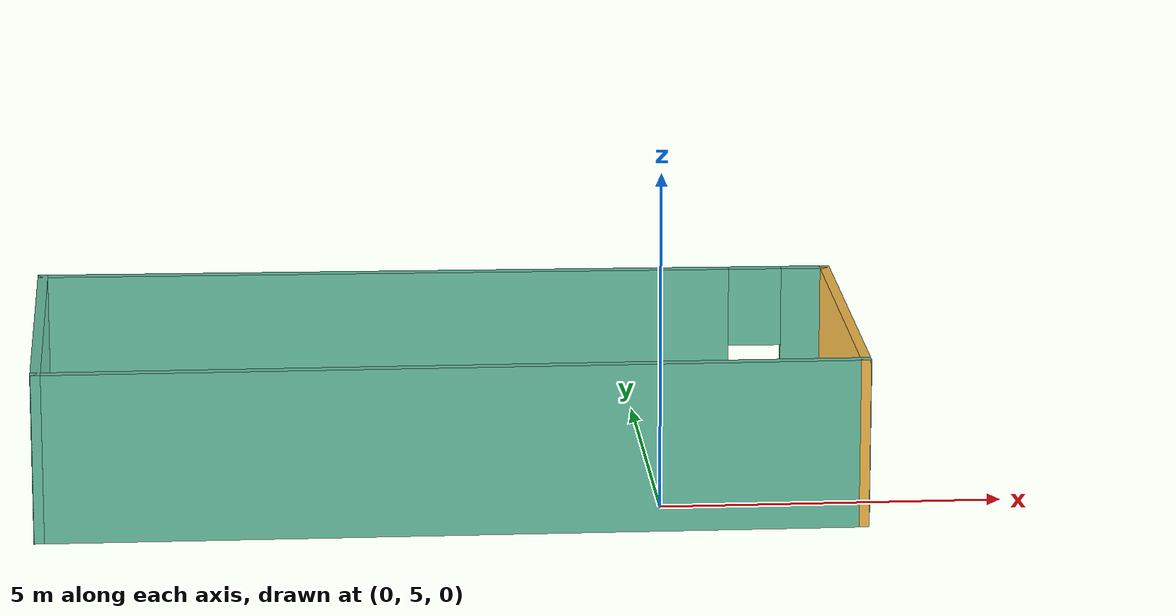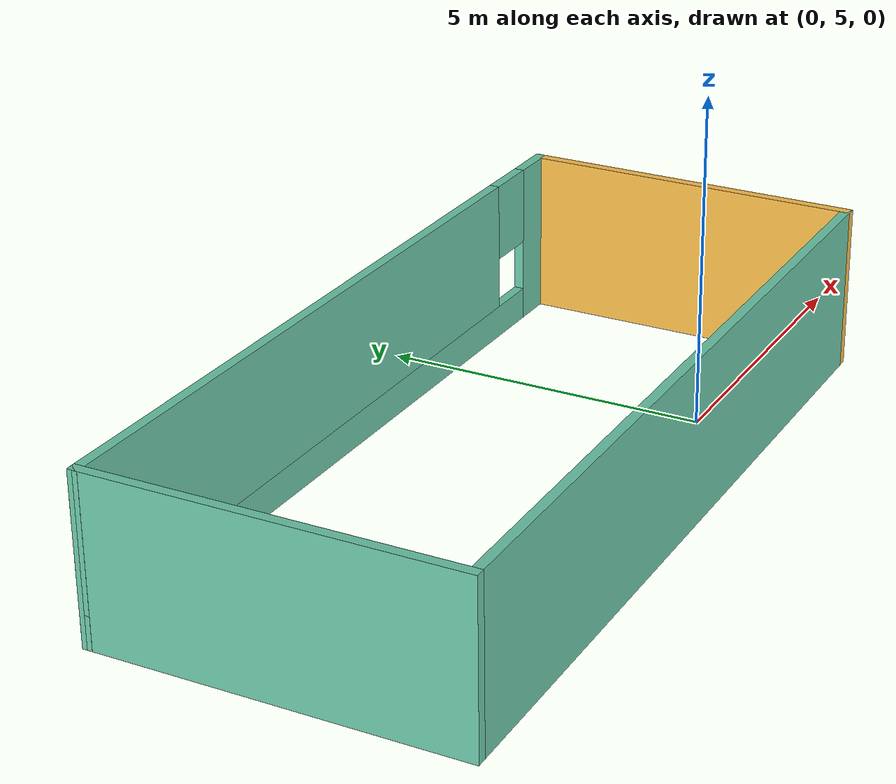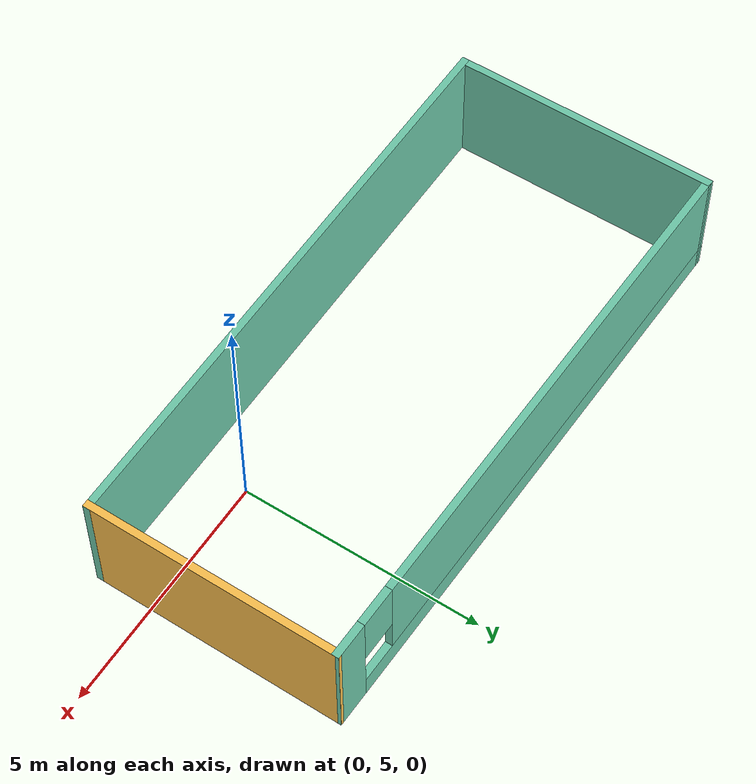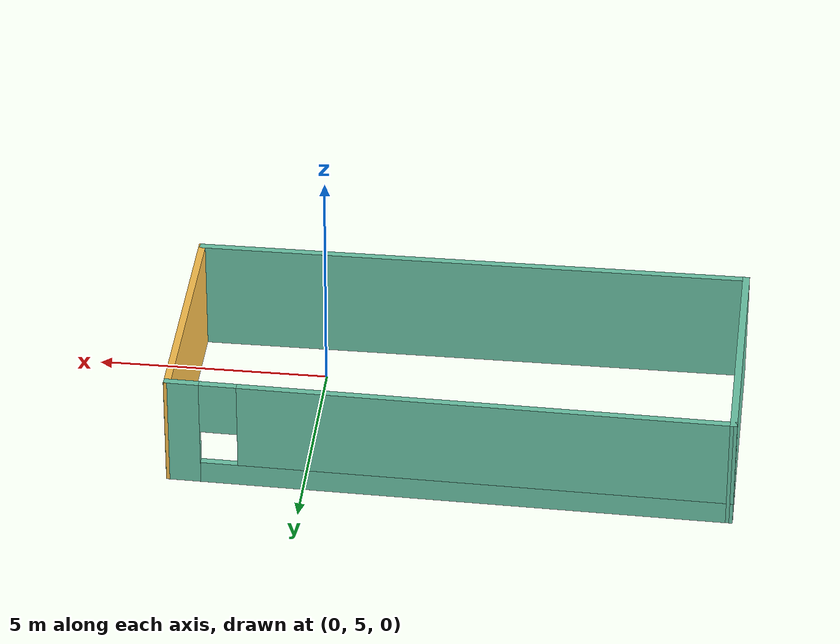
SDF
<?xml version='1.0'?>
<sdf version='1.7'>
  <model name='building2'>
    <pose>-3.07669 4.65816 0 0 -0 0</pose>
    <link name='Wall_1'>
      <collision name='Wall_1_Collision'>
        <geometry>
          <box>
            <size>5.5 0.15 2.5</size>
          </box>
        </geometry>
        <pose>0 0 1.25 0 -0 0</pose>
      </collision>
      <visual name='Wall_1_Visual'>
        <pose>0 0 1.25 0 -0 0</pose>
        <geometry>
          <box>
            <size>5.5 0.15 2.5</size>
          </box>
        </geometry>
        <material>
          <script>
            <uri>file://media/materials/scripts/gazebo.material</uri>
            <name>Gazebo/Grey</name>
          </script>
          <ambient>0.435294 0.796078 0.67451 1</ambient>
        </material>
        <meta>
          <layer>0</layer>
        </meta>
      </visual>
      <pose>-5.925 1.90659 0 0 -0 -1.5708</pose>
    </link>
    <link name='Wall_2'>
      <collision name='Wall_2_Collision'>
        <geometry>
          <box>
            <size>12 0.15 2.5</size>
          </box>
        </geometry>
        <pose>0 0 1.25 0 -0 0</pose>
      </collision>
      <visual name='Wall_2_Visual'>
        <pose>0 0 1.25 0 -0 0</pose>
        <geometry>
          <box>
            <size>12 0.15 2.5</size>
          </box>
        </geometry>
        <material>
          <script>
            <uri>file://media/materials/scripts/gazebo.material</uri>
            <name>Gazebo/Grey</name>
          </script>
          <ambient>0.435294 0.796078 0.67451 1</ambient>
        </material>
        <meta>
          <layer>0</layer>
        </meta>
      </visual>
      <pose>0 -0.768408 0 0 -0 0</pose>
    </link>
    <link name='Wall_4'>
      <pose>0 4.45659 0 0 -0 3.1205</pose>
      <visual name='Wall_4_Visual_0'>
        <pose>-5.63028 0 1.25 0 -0 0</pose>
        <geometry>
          <box>
            <size>0.742071 0.15 2.5</size>
          </box>
        </geometry>
        <material>
          <script>
            <uri>file://media/materials/scripts/gazebo.material</uri>
            <name>Gazebo/Grey</name>
          </script>
          <ambient>0.435294 0.796078 0.67451 1</ambient>
        </material>
        <meta>
          <layer>0</layer>
        </meta>
      </visual>
      <collision name='Wall_4_Collision_0'>
        <geometry>
          <box>
            <size>0.742071 0.15 2.5</size>
          </box>
        </geometry>
        <pose>-5.63028 0 1.25 0 -0 0</pose>
      </collision>
      <visual name='Wall_4_Visual_1'>
        <pose>0.371036 0 0.25 0 -0 0</pose>
        <geometry>
          <box>
            <size>11.2606 0.15 0.5</size>
          </box>
        </geometry>
        <material>
          <script>
            <uri>file://media/materials/scripts/gazebo.material</uri>
            <name>Gazebo/Grey</name>
          </script>
          <ambient>0.435294 0.796078 0.67451 1</ambient>
        </material>
        <meta>
          <layer>0</layer>
        </meta>
      </visual>
      <collision name='Wall_4_Collision_1'>
        <geometry>
          <box>
            <size>11.2606 0.15 0.5</size>
          </box>
        </geometry>
        <pose>0.371036 0 0.25 0 -0 0</pose>
      </collision>
      <visual name='Wall_4_Visual_2'>
        <pose>0.771036 0 1.5 0 -0 0</pose>
        <geometry>
          <box>
            <size>10.4606 0.15 2</size>
          </box>
        </geometry>
        <material>
          <script>
            <uri>file://media/materials/scripts/gazebo.material</uri>
            <name>Gazebo/Grey</name>
          </script>
          <ambient>0.435294 0.796078 0.67451 1</ambient>
        </material>
        <meta>
          <layer>0</layer>
        </meta>
      </visual>
      <collision name='Wall_4_Collision_2'>
        <geometry>
          <box>
            <size>10.4606 0.15 2</size>
          </box>
        </geometry>
        <pose>0.771036 0 1.5 0 -0 0</pose>
      </collision>
      <visual name='Wall_4_Visual_3'>
        <pose>-4.85925 0 1.9 0 -0 0</pose>
        <geometry>
          <box>
            <size>0.8 0.15 1.2</size>
          </box>
        </geometry>
        <material>
          <script>
            <uri>file://media/materials/scripts/gazebo.material</uri>
            <name>Gazebo/Grey</name>
          </script>
          <ambient>0.435294 0.796078 0.67451 1</ambient>
        </material>
        <meta>
          <layer>0</layer>
        </meta>
      </visual>
      <collision name='Wall_4_Collision_3'>
        <geometry>
          <box>
            <size>0.8 0.15 1.2</size>
          </box>
        </geometry>
        <pose>-4.85925 0 1.9 0 -0 0</pose>
      </collision>
    </link>
    <link name='Wall_6'>
      <collision name='Wall_6_Collision'>
        <geometry>
          <box>
            <size>5.25 0.15 2.5</size>
          </box>
        </geometry>
        <pose>0 0 1.25 0 -0 0</pose>
      </collision>
      <visual name='Wall_6_Visual'>
        <pose>0 0 1.25 0 -0 0</pose>
        <geometry>
          <box>
            <size>5.25 0.15 2.5</size>
          </box>
        </geometry>
        <material>
          <script>
            <uri>file://media/materials/scripts/gazebo.material</uri>
            <name>Gazebo/Grey</name>
          </script>
          <ambient>1 0.764706 0.305882 1</ambient>
        </material>
        <meta>
          <layer>0</layer>
        </meta>
      </visual>
      <pose>5.925 1.78159 0 0 -0 -1.5708</pose>
    </link>
    <static>1</static>
  </model>
</sdf>
